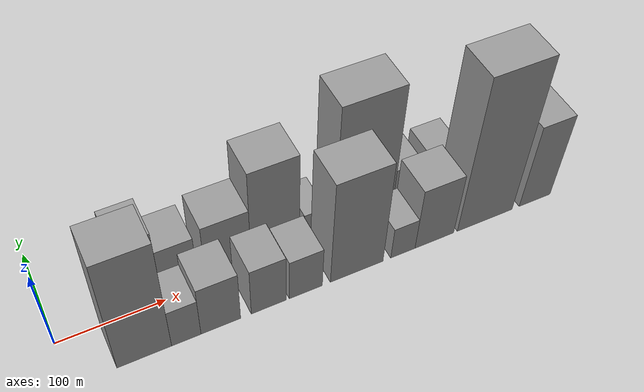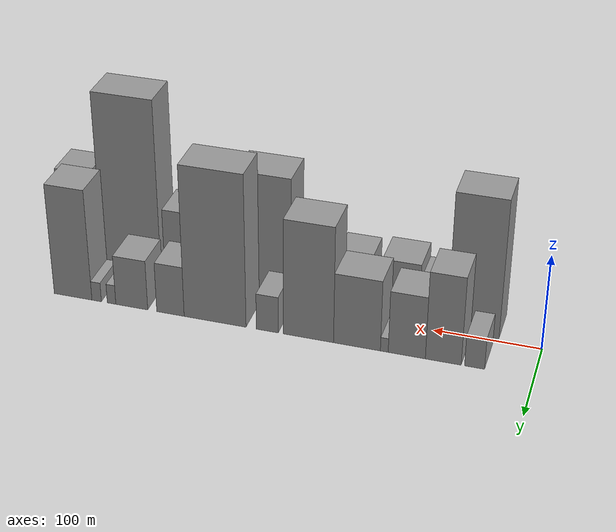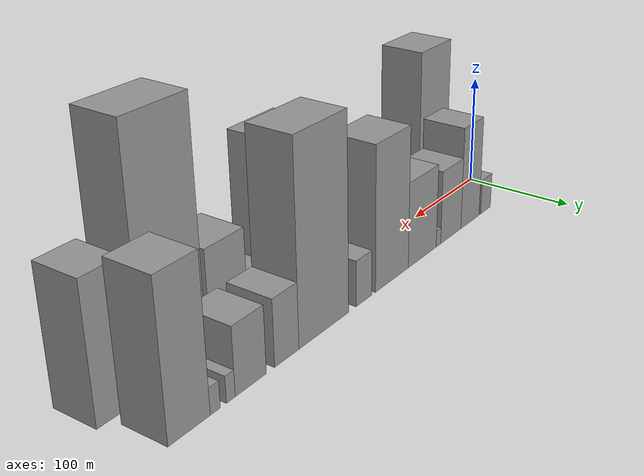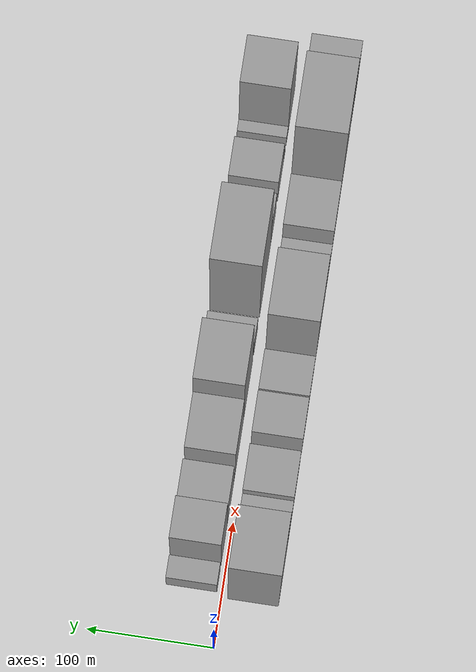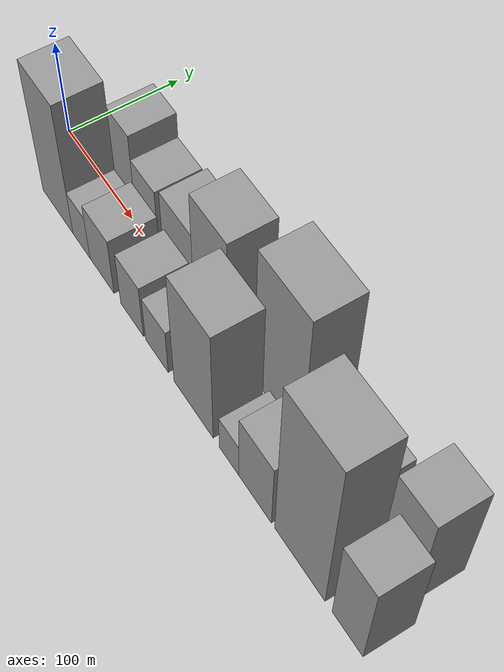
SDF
<sdf version="1.6">
 <world name="default">
  <scene>
   <sky><clouds><speed>12</speed></clouds></sky>
   <ambient>0.4 0.4 0.4 1</ambient>
   <background>0.7 0.7 0.7 1</background>
   <shadows>1</shadows>
  </scene>
  <gravity>0 0 -9.8066</gravity>
  <magnetic_field>6e-06 2.3e-05 -4.2e-05</magnetic_field>
  <physics default="0" name="default_physics" type="ode">
   <ode>
    <solver>
     <type>quick</type>
     <iters>10</iters>
     <sor>1.0</sor>
     <use_dynamic_moi_rescaling>0</use_dynamic_moi_rescaling>
    </solver>
    <constraints>
     <cfm>0</cfm>
     <erp>0.2</erp>
     <contact_max_correcting_vel>100</contact_max_correcting_vel>
     <contact_surface_layer>0.001</contact_surface_layer>
    </constraints>
   </ode>
   <max_step_size>0.004</max_step_size>
   <real_time_factor>1</real_time_factor>
   <real_time_update_rate>250</real_time_update_rate>
  </physics>
  <light name="sun" type="directional">
   <pose>0 0 10 0 0 0</pose>
   <diffuse>0.8 0.8 0.8 1</diffuse>
   <specular>0.2 0.2 0.2 1</specular>
   <attenuation>
    <range>1000</range>
    <constant>0.9</constant>
    <linear>0.01</linear>
    <quadratic>0.001</quadratic>
   </attenuation>
   <direction>-0.5 0.1 -0.9</direction>
  </light>
  <model name="building_1">
   <static>1</static>
   <pose>53.0184 24.5000 0 0.000000 0.000000 1.570796</pose>
   <link name="link">
    <pose>0 0 16.50 0 0 0</pose>
    <collision name="collision"><geometry><box><size>40.0000 18.0367 33.0000</size></box></geometry></collision>
    <visual name="visual">
     <cast_shadows>0</cast_shadows>
     <geometry><box><size>40.0000 18.0367 33.0000</size></box></geometry>
     <material>
      <script>
       <uri>model://grey_wall/materials/scripts</uri>
       <uri>model://grey_wall/materials/textures</uri>
       <name>vrc/grey_wall</name>
      </script>
     </material>
    </visual>
   </link>
  </model>
  <model name="building_2">
   <static>1</static>
   <pose>81.3368 24.5000 0 0.000000 0.000000 1.570796</pose>
   <link name="link">
    <pose>0 0 46.50 0 0 0</pose>
    <collision name="collision"><geometry><box><size>40.0000 32.6002 93.0000</size></box></geometry></collision>
    <visual name="visual">
     <cast_shadows>0</cast_shadows>
     <geometry><box><size>40.0000 32.6002 93.0000</size></box></geometry>
     <material>
      <script>
       <uri>model://grey_wall/materials/scripts</uri>
       <uri>model://grey_wall/materials/textures</uri>
       <name>vrc/grey_wall</name>
      </script>
     </material>
    </visual>
   </link>
  </model>
  <model name="building_3">
   <static>1</static>
   <pose>114.7060 24.5000 0 0.000000 0.000000 1.570796</pose>
   <link name="link">
    <pose>0 0 33.00 0 0 0</pose>
    <collision name="collision"><geometry><box><size>40.0000 34.1382 66.0000</size></box></geometry></collision>
    <visual name="visual">
     <cast_shadows>0</cast_shadows>
     <geometry><box><size>40.0000 34.1382 66.0000</size></box></geometry>
     <material>
      <script>
       <uri>model://grey_wall/materials/scripts</uri>
       <uri>model://grey_wall/materials/textures</uri>
       <name>vrc/grey_wall</name>
      </script>
     </material>
    </visual>
   </link>
  </model>
  <model name="building_4">
   <static>1</static>
   <pose>135.4012 24.5000 0 0.000000 0.000000 1.570796</pose>
   <link name="link">
    <pose>0 0 7.50 0 0 0</pose>
    <collision name="collision"><geometry><box><size>40.0000 7.2523 15.0000</size></box></geometry></collision>
    <visual name="visual">
     <cast_shadows>0</cast_shadows>
     <geometry><box><size>40.0000 7.2523 15.0000</size></box></geometry>
     <material>
      <script>
       <uri>model://grey_wall/materials/scripts</uri>
       <uri>model://grey_wall/materials/textures</uri>
       <name>vrc/grey_wall</name>
      </script>
     </material>
    </visual>
   </link>
  </model>
  <model name="building_5">
   <static>1</static>
   <pose>160.9136 24.5000 0 0.000000 0.000000 1.570796</pose>
   <link name="link">
    <pose>0 0 37.50 0 0 0</pose>
    <collision name="collision"><geometry><box><size>40.0000 43.7724 75.0000</size></box></geometry></collision>
    <visual name="visual">
     <cast_shadows>0</cast_shadows>
     <geometry><box><size>40.0000 43.7724 75.0000</size></box></geometry>
     <material>
      <script>
       <uri>model://grey_wall/materials/scripts</uri>
       <uri>model://grey_wall/materials/textures</uri>
       <name>vrc/grey_wall</name>
      </script>
     </material>
    </visual>
   </link>
  </model>
  <model name="building_6">
   <static>1</static>
   <pose>206.5788 24.5000 0 0.000000 0.000000 1.570796</pose>
   <link name="link">
    <pose>0 0 61.50 0 0 0</pose>
    <collision name="collision"><geometry><box><size>40.0000 47.5581 123.0000</size></box></geometry></collision>
    <visual name="visual">
     <cast_shadows>0</cast_shadows>
     <geometry><box><size>40.0000 47.5581 123.0000</size></box></geometry>
     <material>
      <script>
       <uri>model://grey_wall/materials/scripts</uri>
       <uri>model://grey_wall/materials/textures</uri>
       <name>vrc/grey_wall</name>
      </script>
     </material>
    </visual>
   </link>
  </model>
  <model name="building_7">
   <static>1</static>
   <pose>245.8811 24.5000 0 0.000000 0.000000 1.570796</pose>
   <link name="link">
    <pose>0 0 19.50 0 0 0</pose>
    <collision name="collision"><geometry><box><size>40.0000 21.0465 39.0000</size></box></geometry></collision>
    <visual name="visual">
     <cast_shadows>0</cast_shadows>
     <geometry><box><size>40.0000 21.0465 39.0000</size></box></geometry>
     <material>
      <script>
       <uri>model://grey_wall/materials/scripts</uri>
       <uri>model://grey_wall/materials/textures</uri>
       <name>vrc/grey_wall</name>
      </script>
     </material>
    </visual>
   </link>
  </model>
  <model name="building_8">
   <static>1</static>
   <pose>296.7148 24.5000 0 0.000000 0.000000 1.570796</pose>
   <link name="link">
    <pose>0 0 81.00 0 0 0</pose>
    <collision name="collision"><geometry><box><size>40.0000 60.6208 162.0000</size></box></geometry></collision>
    <visual name="visual">
     <cast_shadows>0</cast_shadows>
     <geometry><box><size>40.0000 60.6208 162.0000</size></box></geometry>
     <material>
      <script>
       <uri>model://grey_wall/materials/scripts</uri>
       <uri>model://grey_wall/materials/textures</uri>
       <name>vrc/grey_wall</name>
      </script>
     </material>
    </visual>
   </link>
  </model>
  <model name="building_9">
   <static>1</static>
   <pose>340.6502 24.5000 0 0.000000 0.000000 1.570796</pose>
   <link name="link">
    <pose>0 0 27.00 0 0 0</pose>
    <collision name="collision"><geometry><box><size>40.0000 27.2500 54.0000</size></box></geometry></collision>
    <visual name="visual">
     <cast_shadows>0</cast_shadows>
     <geometry><box><size>40.0000 27.2500 54.0000</size></box></geometry>
     <material>
      <script>
       <uri>model://grey_wall/materials/scripts</uri>
       <uri>model://grey_wall/materials/textures</uri>
       <name>vrc/grey_wall</name>
      </script>
     </material>
    </visual>
   </link>
  </model>
  <model name="building_10">
   <static>1</static>
   <pose>379.3620 24.5000 0 0.000000 0.000000 1.570796</pose>
   <link name="link">
    <pose>0 0 27.00 0 0 0</pose>
    <collision name="collision"><geometry><box><size>40.0000 32.1737 54.0000</size></box></geometry></collision>
    <visual name="visual">
     <cast_shadows>0</cast_shadows>
     <geometry><box><size>40.0000 32.1737 54.0000</size></box></geometry>
     <material>
      <script>
       <uri>model://grey_wall/materials/scripts</uri>
       <uri>model://grey_wall/materials/textures</uri>
       <name>vrc/grey_wall</name>
      </script>
     </material>
    </visual>
   </link>
  </model>
  <model name="building_11">
   <static>1</static>
   <pose>399.7748 24.5000 0 0.000000 0.000000 1.570796</pose>
   <link name="link">
    <pose>0 0 10.50 0 0 0</pose>
    <collision name="collision"><geometry><box><size>40.0000 8.6518 21.0000</size></box></geometry></collision>
    <visual name="visual">
     <cast_shadows>0</cast_shadows>
     <geometry><box><size>40.0000 8.6518 21.0000</size></box></geometry>
     <material>
      <script>
       <uri>model://grey_wall/materials/scripts</uri>
       <uri>model://grey_wall/materials/textures</uri>
       <name>vrc/grey_wall</name>
      </script>
     </material>
    </visual>
   </link>
  </model>
  <model name="building_12">
   <static>1</static>
   <pose>414.9263 24.5000 0 0.000000 0.000000 1.570796</pose>
   <link name="link">
    <pose>0 0 10.50 0 0 0</pose>
    <collision name="collision"><geometry><box><size>40.0000 9.6511 21.0000</size></box></geometry></collision>
    <visual name="visual">
     <cast_shadows>0</cast_shadows>
     <geometry><box><size>40.0000 9.6511 21.0000</size></box></geometry>
     <material>
      <script>
       <uri>model://grey_wall/materials/scripts</uri>
       <uri>model://grey_wall/materials/textures</uri>
       <name>vrc/grey_wall</name>
      </script>
     </material>
    </visual>
   </link>
  </model>
  <model name="building_13">
   <static>1</static>
   <pose>439.0455 24.5000 0 0.000000 0.000000 1.570796</pose>
   <link name="link">
    <pose>0 0 60.00 0 0 0</pose>
    <collision name="collision"><geometry><box><size>40.0000 38.5873 120.0000</size></box></geometry></collision>
    <visual name="visual">
     <cast_shadows>0</cast_shadows>
     <geometry><box><size>40.0000 38.5873 120.0000</size></box></geometry>
     <material>
      <script>
       <uri>model://grey_wall/materials/scripts</uri>
       <uri>model://grey_wall/materials/textures</uri>
       <name>vrc/grey_wall</name>
      </script>
     </material>
    </visual>
   </link>
  </model>
  <model name="building_14">
   <static>1</static>
   <pose>64.1071 -24.5000 0 0.000000 0.000000 1.570796</pose>
   <link name="link">
    <pose>0 0 73.50 0 0 0</pose>
    <collision name="collision"><geometry><box><size>40.0000 48.2143 147.0000</size></box></geometry></collision>
    <visual name="visual">
     <cast_shadows>0</cast_shadows>
     <geometry><box><size>40.0000 48.2143 147.0000</size></box></geometry>
     <material>
      <script>
       <uri>model://grey_wall/materials/scripts</uri>
       <uri>model://grey_wall/materials/textures</uri>
       <name>vrc/grey_wall</name>
      </script>
     </material>
    </visual>
   </link>
  </model>
  <model name="building_15">
   <static>1</static>
   <pose>101.4823 -24.5000 0 0.000000 0.000000 1.570796</pose>
   <link name="link">
    <pose>0 0 25.50 0 0 0</pose>
    <collision name="collision"><geometry><box><size>40.0000 26.5360 51.0000</size></box></geometry></collision>
    <visual name="visual">
     <cast_shadows>0</cast_shadows>
     <geometry><box><size>40.0000 26.5360 51.0000</size></box></geometry>
     <material>
      <script>
       <uri>model://grey_wall/materials/scripts</uri>
       <uri>model://grey_wall/materials/textures</uri>
       <name>vrc/grey_wall</name>
      </script>
     </material>
    </visual>
   </link>
  </model>
  <model name="building_16">
   <static>1</static>
   <pose>133.0016 -24.5000 0 0.000000 0.000000 1.570796</pose>
   <link name="link">
    <pose>0 0 33.00 0 0 0</pose>
    <collision name="collision"><geometry><box><size>40.0000 36.5025 66.0000</size></box></geometry></collision>
    <visual name="visual">
     <cast_shadows>0</cast_shadows>
     <geometry><box><size>40.0000 36.5025 66.0000</size></box></geometry>
     <material>
      <script>
       <uri>model://grey_wall/materials/scripts</uri>
       <uri>model://grey_wall/materials/textures</uri>
       <name>vrc/grey_wall</name>
      </script>
     </material>
    </visual>
   </link>
  </model>
  <model name="building_17">
   <static>1</static>
   <pose>177.8374 -24.5000 0 0.000000 0.000000 1.570796</pose>
   <link name="link">
    <pose>0 0 31.50 0 0 0</pose>
    <collision name="collision"><geometry><box><size>40.0000 33.1692 63.0000</size></box></geometry></collision>
    <visual name="visual">
     <cast_shadows>0</cast_shadows>
     <geometry><box><size>40.0000 33.1692 63.0000</size></box></geometry>
     <material>
      <script>
       <uri>model://grey_wall/materials/scripts</uri>
       <uri>model://grey_wall/materials/textures</uri>
       <name>vrc/grey_wall</name>
      </script>
     </material>
    </visual>
   </link>
  </model>
  <model name="building_18">
   <static>1</static>
   <pose>213.4440 -24.5000 0 0.000000 0.000000 1.570796</pose>
   <link name="link">
    <pose>0 0 27.00 0 0 0</pose>
    <collision name="collision"><geometry><box><size>40.0000 32.0440 54.0000</size></box></geometry></collision>
    <visual name="visual">
     <cast_shadows>0</cast_shadows>
     <geometry><box><size>40.0000 32.0440 54.0000</size></box></geometry>
     <material>
      <script>
       <uri>model://grey_wall/materials/scripts</uri>
       <uri>model://grey_wall/materials/textures</uri>
       <name>vrc/grey_wall</name>
      </script>
     </material>
    </visual>
   </link>
  </model>
  <model name="building_19">
   <static>1</static>
   <pose>263.8789 -24.5000 0 0.000000 0.000000 1.570796</pose>
   <link name="link">
    <pose>0 0 67.50 0 0 0</pose>
    <collision name="collision"><geometry><box><size>40.0000 52.8258 135.0000</size></box></geometry></collision>
    <visual name="visual">
     <cast_shadows>0</cast_shadows>
     <geometry><box><size>40.0000 52.8258 135.0000</size></box></geometry>
     <material>
      <script>
       <uri>model://grey_wall/materials/scripts</uri>
       <uri>model://grey_wall/materials/textures</uri>
       <name>vrc/grey_wall</name>
      </script>
     </material>
    </visual>
   </link>
  </model>
  <model name="building_20">
   <static>1</static>
   <pose>310.8146 -24.5000 0 0.000000 0.000000 1.570796</pose>
   <link name="link">
    <pose>0 0 21.00 0 0 0</pose>
    <collision name="collision"><geometry><box><size>40.0000 25.0458 42.0000</size></box></geometry></collision>
    <visual name="visual">
     <cast_shadows>0</cast_shadows>
     <geometry><box><size>40.0000 25.0458 42.0000</size></box></geometry>
     <material>
      <script>
       <uri>model://grey_wall/materials/scripts</uri>
       <uri>model://grey_wall/materials/textures</uri>
       <name>vrc/grey_wall</name>
      </script>
     </material>
    </visual>
   </link>
  </model>
  <model name="building_21">
   <static>1</static>
   <pose>343.7948 -24.5000 0 0.000000 0.000000 1.570796</pose>
   <link name="link">
    <pose>0 0 40.50 0 0 0</pose>
    <collision name="collision"><geometry><box><size>40.0000 40.9146 81.0000</size></box></geometry></collision>
    <visual name="visual">
     <cast_shadows>0</cast_shadows>
     <geometry><box><size>40.0000 40.9146 81.0000</size></box></geometry>
     <material>
      <script>
       <uri>model://grey_wall/materials/scripts</uri>
       <uri>model://grey_wall/materials/textures</uri>
       <name>vrc/grey_wall</name>
      </script>
     </material>
    </visual>
   </link>
  </model>
  <model name="building_22">
   <static>1</static>
   <pose>398.1560 -24.5000 0 0.000000 0.000000 1.570796</pose>
   <link name="link">
    <pose>0 0 97.50 0 0 0</pose>
    <collision name="collision"><geometry><box><size>40.0000 59.8078 195.0000</size></box></geometry></collision>
    <visual name="visual">
     <cast_shadows>0</cast_shadows>
     <geometry><box><size>40.0000 59.8078 195.0000</size></box></geometry>
     <material>
      <script>
       <uri>model://grey_wall/materials/scripts</uri>
       <uri>model://grey_wall/materials/textures</uri>
       <name>vrc/grey_wall</name>
      </script>
     </material>
    </visual>
   </link>
  </model>
  <model name="building_23">
   <static>1</static>
   <pose>453.4718 -24.5000 0 0.000000 0.000000 1.570796</pose>
   <link name="link">
    <pose>0 0 54.00 0 0 0</pose>
    <collision name="collision"><geometry><box><size>40.0000 34.8239 108.0000</size></box></geometry></collision>
    <visual name="visual">
     <cast_shadows>0</cast_shadows>
     <geometry><box><size>40.0000 34.8239 108.0000</size></box></geometry>
     <material>
      <script>
       <uri>model://grey_wall/materials/scripts</uri>
       <uri>model://grey_wall/materials/textures</uri>
       <name>vrc/grey_wall</name>
      </script>
     </material>
    </visual>
   </link>
  </model>
 </world>
</sdf>
